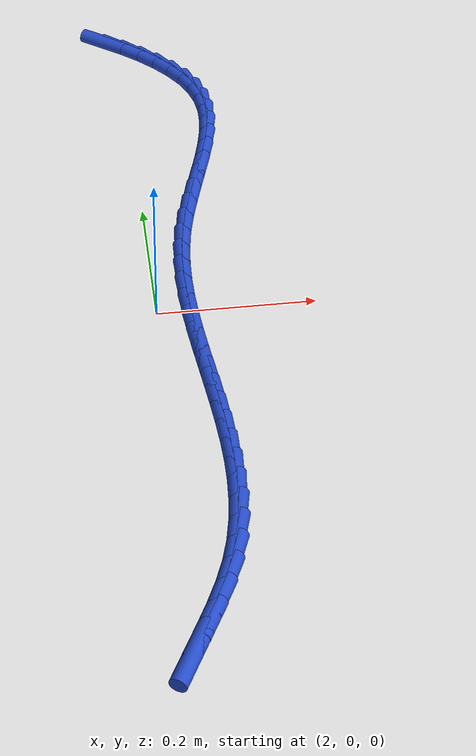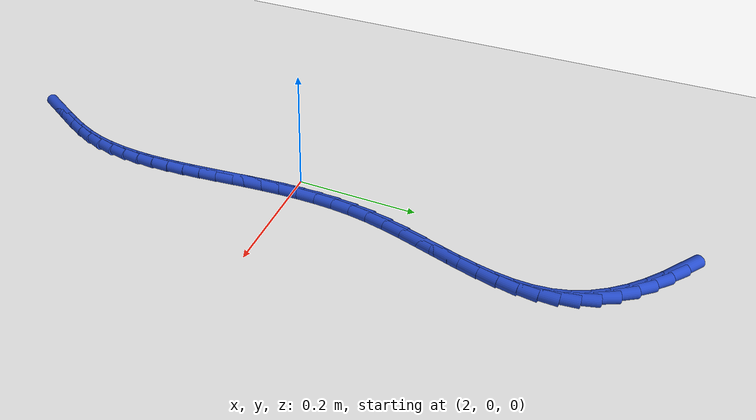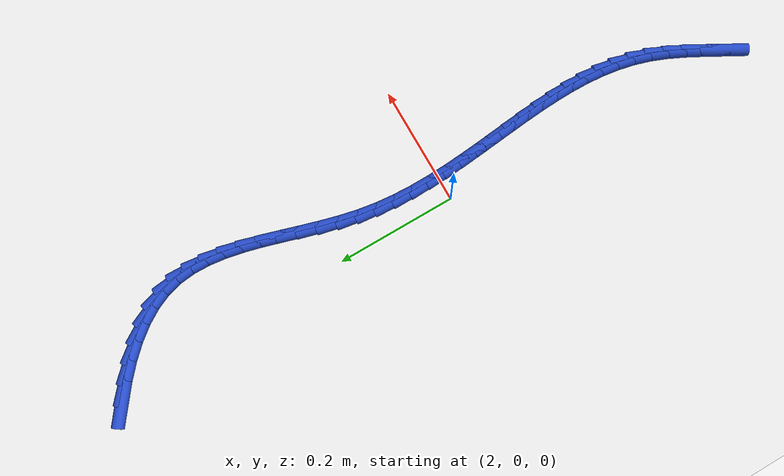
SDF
<sdf version="1.6">
 <world name="default">
  <model name="ground_plane">
   <static>1</static>
   <link name="link">
    <collision name="collision">
     <geometry><plane><normal>0 0 1</normal><size>100 100</size></plane></geometry>
     <surface><friction><ode><mu>100</mu><mu2>50</mu2></ode></friction></surface>
    </collision>
    <visual name="visual">
     <cast_shadows>0</cast_shadows>
     <geometry><plane><normal>0 0 1</normal><size>100 100</size></plane></geometry>
     <material>
      <script><uri>file://media/materials/scripts/gazebo.material</uri><name>Gazebo/WhiteGlow</name></script>
     </material>
    </visual>
   </link>
  </model>
  <model name="line">
   <link name="link_101">
    <pose>1.9804036250773722 0.595543129101147 0.01 0 1.57 -0.6434309474629379</pose>
    <collision name="collision">
     <geometry><cylinder><radius>0.01</radius><length>0.08</length></cylinder></geometry>
    </collision>
    <visual name="visual">
     <material>
      <script><name>Gazebo/Blue</name><uri>file://media/materials/scripts/gazebo.material</uri></script>
     </material>
     <geometry><cylinder><radius>0.01</radius><length>0.08</length></cylinder></geometry>
    </visual>
   </link>
   <link name="link_102">
    <pose>2.006198623301889 0.5761997081142681 0.01 0 1.57 -0.710322777791241</pose>
    <collision name="collision">
     <geometry><cylinder><radius>0.01</radius><length>0.08</length></cylinder></geometry>
    </collision>
    <visual name="visual">
     <material>
      <script><name>Gazebo/Blue</name><uri>file://media/materials/scripts/gazebo.material</uri></script>
     </material>
     <geometry><cylinder><radius>0.01</radius><length>0.08</length></cylinder></geometry>
    </visual>
   </link>
   <link name="link_103">
    <pose>2.030249786850278 0.5555135413275172 0.01 0 1.57 -0.7896338645732375</pose>
    <collision name="collision">
     <geometry><cylinder><radius>0.01</radius><length>0.08</length></cylinder></geometry>
    </collision>
    <visual name="visual">
     <material>
      <script><name>Gazebo/Blue</name><uri>file://media/materials/scripts/gazebo.material</uri></script>
     </material>
     <geometry><cylinder><radius>0.01</radius><length>0.08</length></cylinder></geometry>
    </visual>
   </link>
   <link name="link_104">
    <pose>2.052014261453437 0.5335639057089573 0.01 0 1.57 -0.8848790058776475</pose>
    <collision name="collision">
     <geometry><cylinder><radius>0.01</radius><length>0.08</length></cylinder></geometry>
    </collision>
    <visual name="visual">
     <material>
      <script><name>Gazebo/Blue</name><uri>file://media/materials/scripts/gazebo.material</uri></script>
     </material>
     <geometry><cylinder><radius>0.01</radius><length>0.08</length></cylinder></geometry>
    </visual>
   </link>
   <link name="link_105">
    <pose>2.0709491928422596 0.5104300782266525 0.01 0 1.57 -1.0000287337664573</pose>
    <collision name="collision">
     <geometry><cylinder><radius>0.01</radius><length>0.08</length></cylinder></geometry>
    </collision>
    <visual name="visual">
     <material>
      <script><name>Gazebo/Blue</name><uri>file://media/materials/scripts/gazebo.material</uri></script>
     </material>
     <geometry><cylinder><radius>0.01</radius><length>0.08</length></cylinder></geometry>
    </visual>
   </link>
   <link name="link_106">
    <pose>2.0865117267476436 0.4861913358486657 0.01 0 1.57 -1.138819394671003</pose>
    <collision name="collision">
     <geometry><cylinder><radius>0.01</radius><length>0.08</length></cylinder></geometry>
    </collision>
    <visual name="visual">
     <material>
      <script><name>Gazebo/Blue</name><uri>file://media/materials/scripts/gazebo.material</uri></script>
     </material>
     <geometry><cylinder><radius>0.01</radius><length>0.08</length></cylinder></geometry>
    </visual>
   </link>
   <link name="link_107">
    <pose>2.0981590089004856 0.4609269555430605 0.01 0 1.57 -1.3011801165932313</pose>
    <collision name="collision">
     <geometry><cylinder><radius>0.01</radius><length>0.08</length></cylinder></geometry>
    </collision>
    <visual name="visual">
     <material>
      <script><name>Gazebo/Blue</name><uri>file://media/materials/scripts/gazebo.material</uri></script>
     </material>
     <geometry><cylinder><radius>0.01</radius><length>0.08</length></cylinder></geometry>
    </visual>
   </link>
   <link name="link_108">
    <pose>2.105402161368216 0.4347164120658843 0.01 0 1.57 -1.4599518578599289</pose>
    <collision name="collision">
     <geometry><cylinder><radius>0.01</radius><length>0.08</length></cylinder></geometry>
    </collision>
    <visual name="visual">
     <material>
      <script><name>Gazebo/Blue</name><uri>file://media/materials/scripts/gazebo.material</uri></script>
     </material>
     <geometry><cylinder><radius>0.01</radius><length>0.08</length></cylinder></geometry>
    </visual>
   </link>
   <link name="link_109">
    <pose>2.10841560501941 0.40764161072963867 0.01 0 1.57 1.5493941081654776</pose>
    <collision name="collision">
     <geometry><cylinder><radius>0.01</radius><length>0.08</length></cylinder></geometry>
    </collision>
    <visual name="visual">
     <material>
      <script><name>Gazebo/Blue</name><uri>file://media/materials/scripts/gazebo.material</uri></script>
     </material>
     <geometry><cylinder><radius>0.01</radius><length>0.08</length></cylinder></geometry>
    </visual>
   </link>
   <link name="link_110">
    <pose>2.107819344023666 0.3797860896183078 0.01 0 1.57 1.4461442180147093</pose>
    <collision name="collision">
     <geometry><cylinder><radius>0.01</radius><length>0.08</length></cylinder></geometry>
    </collision>
    <visual name="visual">
     <material>
      <script><name>Gazebo/Blue</name><uri>file://media/materials/scripts/gazebo.material</uri></script>
     </material>
     <geometry><cylinder><radius>0.01</radius><length>0.08</length></cylinder></geometry>
    </visual>
   </link>
   <link name="link_111">
    <pose>2.1042416436784395 0.35123341708750844 0.01 0 1.57 1.3701844531219975</pose>
    <collision name="collision">
     <geometry><cylinder><radius>0.01</radius><length>0.08</length></cylinder></geometry>
    </collision>
    <visual name="visual">
     <material>
      <script><name>Gazebo/Blue</name><uri>file://media/materials/scripts/gazebo.material</uri></script>
     </material>
     <geometry><cylinder><radius>0.01</radius><length>0.08</length></cylinder></geometry>
    </visual>
   </link>
   <link name="link_112">
    <pose>2.098310769281186 0.3220671614928575 0.01 0 1.57 1.3184873934422305</pose>
    <collision name="collision">
     <geometry><cylinder><radius>0.01</radius><length>0.08</length></cylinder></geometry>
    </collision>
    <visual name="visual">
     <material>
      <script><name>Gazebo/Blue</name><uri>file://media/materials/scripts/gazebo.material</uri></script>
     </material>
     <geometry><cylinder><radius>0.01</radius><length>0.08</length></cylinder></geometry>
    </visual>
   </link>
   <link name="link_113">
    <pose>2.090654986129361 0.2923708911899727 0.01 0 1.57 1.288201130408637</pose>
    <collision name="collision">
     <geometry><cylinder><radius>0.01</radius><length>0.08</length></cylinder></geometry>
    </collision>
    <visual name="visual">
     <material>
      <script><name>Gazebo/Blue</name><uri>file://media/materials/scripts/gazebo.material</uri></script>
     </material>
     <geometry><cylinder><radius>0.01</radius><length>0.08</length></cylinder></geometry>
    </visual>
   </link>
   <link name="link_114">
    <pose>2.0819025595204197 0.26222817453447067 0.01 0 1.57 1.27726191107554</pose>
    <collision name="collision">
     <geometry><cylinder><radius>0.01</radius><length>0.08</length></cylinder></geometry>
    </collision>
    <visual name="visual">
     <material>
      <script><name>Gazebo/Blue</name><uri>file://media/materials/scripts/gazebo.material</uri></script>
     </material>
     <geometry><cylinder><radius>0.01</radius><length>0.08</length></cylinder></geometry>
    </visual>
   </link>
   <link name="link_115">
    <pose>2.0726817547518177 0.2317225798819679 0.01 0 1.57 1.284549547609622</pose>
    <collision name="collision">
     <geometry><cylinder><radius>0.01</radius><length>0.08</length></cylinder></geometry>
    </collision>
    <visual name="visual">
     <material>
      <script><name>Gazebo/Blue</name><uri>file://media/materials/scripts/gazebo.material</uri></script>
     </material>
     <geometry><cylinder><radius>0.01</radius><length>0.08</length></cylinder></geometry>
    </visual>
   </link>
   <link name="link_116">
    <pose>2.06362083712101 0.20093767558808243 0.01 0 1.57 1.3098546514885123</pose>
    <collision name="collision">
     <geometry><cylinder><radius>0.01</radius><length>0.08</length></cylinder></geometry>
    </collision>
    <visual name="visual">
     <material>
      <script><name>Gazebo/Blue</name><uri>file://media/materials/scripts/gazebo.material</uri></script>
     </material>
     <geometry><cylinder><radius>0.01</radius><length>0.08</length></cylinder></geometry>
    </visual>
   </link>
   <link name="link_117">
    <pose>2.055348071925452 0.16995703000843077 0.01 0 1.57 1.353757469798494</pose>
    <collision name="collision">
     <geometry><cylinder><radius>0.01</radius><length>0.08</length></cylinder></geometry>
    </collision>
    <visual name="visual">
     <material>
      <script><name>Gazebo/Blue</name><uri>file://media/materials/scripts/gazebo.material</uri></script>
     </material>
     <geometry><cylinder><radius>0.01</radius><length>0.08</length></cylinder></geometry>
    </visual>
   </link>
   <link name="link_118">
    <pose>2.0484917244625995 0.13886421149862987 0.01 0 1.57 1.4150981025286642</pose>
    <collision name="collision">
     <geometry><cylinder><radius>0.01</radius><length>0.08</length></cylinder></geometry>
    </collision>
    <visual name="visual">
     <material>
      <script><name>Gazebo/Blue</name><uri>file://media/materials/scripts/gazebo.material</uri></script>
     </material>
     <geometry><cylinder><radius>0.01</radius><length>0.08</length></cylinder></geometry>
    </visual>
   </link>
   <link name="link_119">
    <pose>2.043605895510134 0.1077380739387158 0.01 0 1.57 1.4770592223319081</pose>
    <collision name="collision">
     <geometry><cylinder><radius>0.01</radius><length>0.08</length></cylinder></geometry>
    </collision>
    <visual name="visual">
     <material>
      <script><name>Gazebo/Blue</name><uri>file://media/materials/scripts/gazebo.material</uri></script>
     </material>
     <geometry><cylinder><radius>0.01</radius><length>0.08</length></cylinder></geometry>
    </visual>
   </link>
   <link name="link_120">
    <pose>2.040680555344338 0.0766216106721613 0.01 0 1.57 1.5311093905896438</pose>
    <collision name="collision">
     <geometry><cylinder><radius>0.01</radius><length>0.08</length></cylinder></geometry>
    </collision>
    <visual name="visual">
     <material>
      <script><name>Gazebo/Blue</name><uri>file://media/materials/scripts/gazebo.material</uri></script>
     </material>
     <geometry><cylinder><radius>0.01</radius><length>0.08</length></cylinder></geometry>
    </visual>
   </link>
   <link name="link_121">
    <pose>2.039446426428073 0.04554133522851264 0.01 0 1.57 -1.5647856857029558</pose>
    <collision name="collision">
     <geometry><cylinder><radius>0.01</radius><length>0.08</length></cylinder></geometry>
    </collision>
    <visual name="visual">
     <material>
      <script><name>Gazebo/Blue</name><uri>file://media/materials/scripts/gazebo.material</uri></script>
     </material>
     <geometry><cylinder><radius>0.01</radius><length>0.08</length></cylinder></geometry>
    </visual>
   </link>
   <link name="link_122">
    <pose>2.039632864700811 0.014523674270427174 0.01 0 1.57 -1.5276152630713329</pose>
    <collision name="collision">
     <geometry><cylinder><radius>0.01</radius><length>0.08</length></cylinder></geometry>
    </collision>
    <visual name="visual">
     <material>
      <script><name>Gazebo/Blue</name><uri>file://media/materials/scripts/gazebo.material</uri></script>
     </material>
     <geometry><cylinder><radius>0.01</radius><length>0.08</length></cylinder></geometry>
    </visual>
   </link>
   <link name="link_123">
    <pose>2.0409692261020256 -0.01640494553943782 0.01 0 1.57 -1.4990141971947093</pose>
    <collision name="collision">
     <geometry><cylinder><radius>0.01</radius><length>0.08</length></cylinder></geometry>
    </collision>
    <visual name="visual">
     <material>
      <script><name>Gazebo/Blue</name><uri>file://media/materials/scripts/gazebo.material</uri></script>
     </material>
     <geometry><cylinder><radius>0.01</radius><length>0.08</length></cylinder></geometry>
    </visual>
   </link>
   <link name="link_124">
    <pose>2.0431848665711883 -0.04721809753842499 0.01 0 1.57 -1.478973114767829</pose>
    <collision name="collision">
     <geometry><cylinder><radius>0.01</radius><length>0.08</length></cylinder></geometry>
    </collision>
    <visual name="visual">
     <material>
      <script><name>Gazebo/Blue</name><uri>file://media/materials/scripts/gazebo.material</uri></script>
     </material>
     <geometry><cylinder><radius>0.01</radius><length>0.08</length></cylinder></geometry>
    </visual>
   </link>
   <link name="link_125">
    <pose>2.0460091420477737 -0.07788935506387785 0.01 0 1.57 -1.467494470775409</pose>
    <collision name="collision">
     <geometry><cylinder><radius>0.01</radius><length>0.08</length></cylinder></geometry>
    </collision>
    <visual name="visual">
     <material>
      <script><name>Gazebo/Blue</name><uri>file://media/materials/scripts/gazebo.material</uri></script>
     </material>
     <geometry><cylinder><radius>0.01</radius><length>0.08</length></cylinder></geometry>
    </visual>
   </link>
   <link name="link_126">
    <pose>2.049171408471253 -0.10839229145313743 0.01 0 1.57 -1.4646378213157107</pose>
    <collision name="collision">
     <geometry><cylinder><radius>0.01</radius><length>0.08</length></cylinder></geometry>
    </collision>
    <visual name="visual">
     <material>
      <script><name>Gazebo/Blue</name><uri>file://media/materials/scripts/gazebo.material</uri></script>
     </material>
     <geometry><cylinder><radius>0.01</radius><length>0.08</length></cylinder></geometry>
    </visual>
   </link>
   <link name="link_127">
    <pose>2.0524010217811 -0.13870048004354724 0.01 0 1.57 -1.4705480452756647</pose>
    <collision name="collision">
     <geometry><cylinder><radius>0.01</radius><length>0.08</length></cylinder></geometry>
    </collision>
    <visual name="visual">
     <material>
      <script><name>Gazebo/Blue</name><uri>file://media/materials/scripts/gazebo.material</uri></script>
     </material>
     <geometry><cylinder><radius>0.01</radius><length>0.08</length></cylinder></geometry>
    </visual>
   </link>
   <link name="link_128">
    <pose>2.055427337916788 -0.16878749417245 0.01 0 1.57 -1.4854669941819205</pose>
    <collision name="collision">
     <geometry><cylinder><radius>0.01</radius><length>0.08</length></cylinder></geometry>
    </collision>
    <visual name="visual">
     <material>
      <script><name>Gazebo/Blue</name><uri>file://media/materials/scripts/gazebo.material</uri></script>
     </material>
     <geometry><cylinder><radius>0.01</radius><length>0.08</length></cylinder></geometry>
    </visual>
   </link>
   <link name="link_129">
    <pose>2.0579797128177897 -0.19862690717718834 0.01 0 1.57 -1.5097268814451772</pose>
    <collision name="collision">
     <geometry><cylinder><radius>0.01</radius><length>0.08</length></cylinder></geometry>
    </collision>
    <visual name="visual">
     <material>
      <script><name>Gazebo/Blue</name><uri>file://media/materials/scripts/gazebo.material</uri></script>
     </material>
     <geometry><cylinder><radius>0.01</radius><length>0.08</length></cylinder></geometry>
    </visual>
   </link>
   <link name="link_130">
    <pose>2.059787502423577 -0.22819229239510497 0.01 0 1.57 -1.5437206923370181</pose>
    <collision name="collision">
     <geometry><cylinder><radius>0.01</radius><length>0.08</length></cylinder></geometry>
    </collision>
    <visual name="visual">
     <material>
      <script><name>Gazebo/Blue</name><uri>file://media/materials/scripts/gazebo.material</uri></script>
     </material>
     <geometry><cylinder><radius>0.01</radius><length>0.08</length></cylinder></geometry>
    </visual>
   </link>
   <link name="link_131">
    <pose>2.060580062673624 -0.2574572231635426 0.01 0 1.57 1.5537507624404587</pose>
    <collision name="collision">
     <geometry><cylinder><radius>0.01</radius><length>0.08</length></cylinder></geometry>
    </collision>
    <visual name="visual">
     <material>
      <script><name>Gazebo/Blue</name><uri>file://media/materials/scripts/gazebo.material</uri></script>
     </material>
     <geometry><cylinder><radius>0.01</radius><length>0.08</length></cylinder></geometry>
    </visual>
   </link>
   <link name="link_132">
    <pose>2.060086749507402 -0.28639527281984456 0.01 0 1.57 1.499208213194339</pose>
    <collision name="collision">
     <geometry><cylinder><radius>0.01</radius><length>0.08</length></cylinder></geometry>
    </collision>
    <visual name="visual">
     <material>
      <script><name>Gazebo/Blue</name><uri>file://media/materials/scripts/gazebo.material</uri></script>
     </material>
     <geometry><cylinder><radius>0.01</radius><length>0.08</length></cylinder></geometry>
    </visual>
   </link>
   <link name="link_133">
    <pose>2.058036918864386 -0.3149800147013521 0.01 0 1.57 1.4341947934816068</pose>
    <collision name="collision">
     <geometry><cylinder><radius>0.01</radius><length>0.08</length></cylinder></geometry>
    </collision>
    <visual name="visual">
     <material>
      <script><name>Gazebo/Blue</name><uri>file://media/materials/scripts/gazebo.material</uri></script>
     </material>
     <geometry><cylinder><radius>0.01</radius><length>0.08</length></cylinder></geometry>
    </visual>
   </link>
   <link name="link_134">
    <pose>2.054159926684048 -0.3431850221454088 0.01 0 1.57 1.3590873591899815</pose>
    <collision name="collision">
     <geometry><cylinder><radius>0.01</radius><length>0.08</length></cylinder></geometry>
    </collision>
    <visual name="visual">
     <material>
      <script><name>Gazebo/Blue</name><uri>file://media/materials/scripts/gazebo.material</uri></script>
     </material>
     <geometry><cylinder><radius>0.01</radius><length>0.08</length></cylinder></geometry>
    </visual>
   </link>
   <link name="link_135">
    <pose>2.0481851289058595 -0.370983868489357 0.01 0 1.57 1.2748745910562838</pose>
    <collision name="collision">
     <geometry><cylinder><radius>0.01</radius><length>0.08</length></cylinder></geometry>
    </collision>
    <visual name="visual">
     <material>
      <script><name>Gazebo/Blue</name><uri>file://media/materials/scripts/gazebo.material</uri></script>
     </material>
     <geometry><cylinder><radius>0.01</radius><length>0.08</length></cylinder></geometry>
    </visual>
   </link>
   <link name="link_136">
    <pose>2.039841885826765 -0.3983501279058488 0.01 0 1.57 1.1890755118731384</pose>
    <collision name="collision">
     <geometry><cylinder><radius>0.01</radius><length>0.08</length></cylinder></geometry>
    </collision>
    <visual name="visual">
     <material>
      <script><name>Gazebo/Blue</name><uri>file://media/materials/scripts/gazebo.material</uri></script>
     </material>
     <geometry><cylinder><radius>0.01</radius><length>0.08</length></cylinder></geometry>
    </visual>
   </link>
   <link name="link_137">
    <pose>2.0290280945342802 -0.42528968237958265 0.01 0 1.57 1.1237183295326623</pose>
    <collision name="collision">
     <geometry><cylinder><radius>0.01</radius><length>0.08</length></cylinder></geometry>
    </collision>
    <visual name="visual">
     <material>
      <script><name>Gazebo/Blue</name><uri>file://media/materials/scripts/gazebo.material</uri></script>
     </material>
     <geometry><cylinder><radius>0.01</radius><length>0.08</length></cylinder></geometry>
    </visual>
   </link>
   <link name="link_138">
    <pose>2.016256967930796 -0.4519263674152506 0.01 0 1.57 1.082316885774045</pose>
    <collision name="collision">
     <geometry><cylinder><radius>0.01</radius><length>0.08</length></cylinder></geometry>
    </collision>
    <visual name="visual">
     <material>
      <script><name>Gazebo/Blue</name><uri>file://media/materials/scripts/gazebo.material</uri></script>
     </material>
     <geometry><cylinder><radius>0.01</radius><length>0.08</length></cylinder></geometry>
    </visual>
   </link>
   <link name="link_139">
    <pose>2.002182103163088 -0.47841092960186293 0.01 0 1.57 1.0633480415449068</pose>
    <collision name="collision">
     <geometry><cylinder><radius>0.01</radius><length>0.08</length></cylinder></geometry>
    </collision>
    <visual name="visual">
     <material>
      <script><name>Gazebo/Blue</name><uri>file://media/materials/scripts/gazebo.material</uri></script>
     </material>
     <geometry><cylinder><radius>0.01</radius><length>0.08</length></cylinder></geometry>
    </visual>
   </link>
   <link name="link_140">
    <pose>1.9874570973779293 -0.5048941155284302 0.01 0 1.57 1.0658326189178045</pose>
    <collision name="collision">
     <geometry><cylinder><radius>0.01</radius><length>0.08</length></cylinder></geometry>
    </collision>
    <visual name="visual">
     <material>
      <script><name>Gazebo/Blue</name><uri>file://media/materials/scripts/gazebo.material</uri></script>
     </material>
     <geometry><cylinder><radius>0.01</radius><length>0.08</length></cylinder></geometry>
    </visual>
   </link>
  </model>
 </world>
</sdf>
